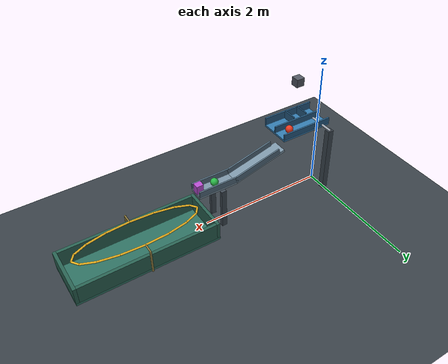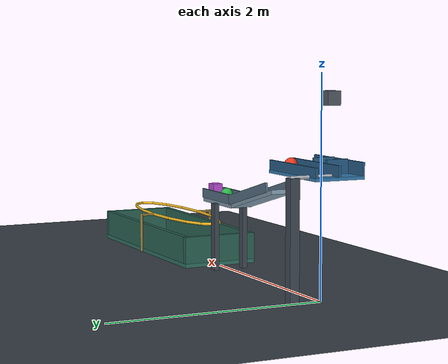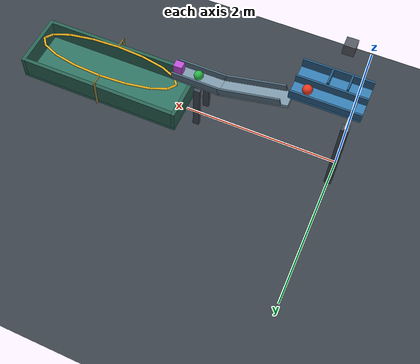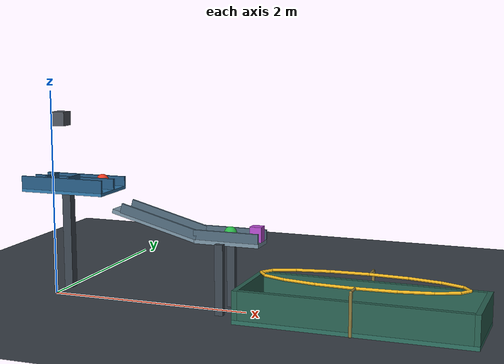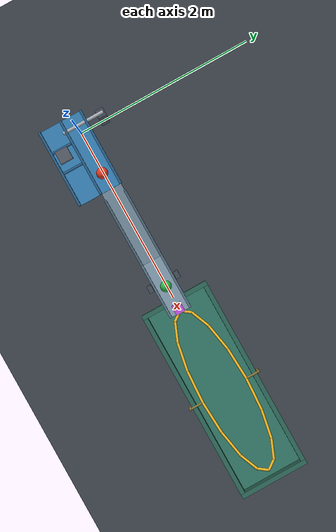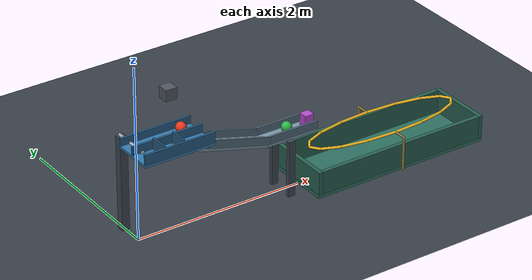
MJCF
<mujoco model="weight_tray_ball_chain">
  <compiler angle="degree" autolimits="true"/>
  <option timestep="0.002" gravity="0 0 -9.81" integrator="implicitfast" solver="Newton" iterations="100" tolerance="1e-10" cone="elliptic"/>
  <size nconmax="300" njmax="1200"/>
  <visual>
    <headlight ambient="0.35 0.35 0.35" diffuse="0.7 0.7 0.7" specular="0.2 0.2 0.2"/>
    <global azimuth="135" elevation="-25"/>
  </visual>

  <worldbody>
    <light name="main_light" pos="1 -3 5" dir="0 0 -1" directional="true"/>
    <camera name="overview" pos="4.8 -6 3.6" xyaxes="0.86 0.51 0 -0.20 0.34 0.92"/>

    <geom name="floor" type="plane" pos="0 0 0" size="8 5 0.1" friction="1 0.05 0.03" condim="6" priority="2" solref="0.01 1" rgba="0.22 0.25 0.28 1"/>

    <!-- The right-hand end lowers as the joint approaches its -15 degree lower limit. -->
    <body name="tray" pos="0 0 1.1">
      <joint name="tray_hinge" type="hinge" axis="0 -1 0" range="-15 0" limited="true" frictionloss="6.4" damping="0.25" armature="0.02" solreflimit="0.006 1" solimplimit="0.99 0.999 0.001"/>
      <geom name="tray_bottom" type="box" pos="0.30 -0.12 -0.015" size="0.42 0.245 0.015" mass="1" friction="0.5 0.003 0.001" condim="6" solref="0.008 1" rgba="0.20 0.48 0.68 1"/>
      <geom name="tray_ball_outer_rail" type="box" pos="0.30 0.112 0.045" size="0.42 0.012 0.045" mass="0.1" friction="0.4 0.003 0.001" condim="6" solref="0.008 1" rgba="0.15 0.36 0.52 1"/>
      <geom name="tray_divider" type="box" pos="0.30 -0.115 0.05" size="0.42 0.012 0.05" mass="0.1" friction="0.4 0.003 0.001" condim="6" solref="0.008 1" rgba="0.15 0.36 0.52 1"/>
      <geom name="tray_weight_outer_rail" type="box" pos="0.30 -0.355 0.06" size="0.42 0.012 0.06" mass="0.1" friction="0.6 0.005 0.001" condim="6" solref="0.008 1" rgba="0.15 0.36 0.52 1"/>
      <geom name="tray_weight_pocket_back" type="box" pos="0.13 -0.235 0.065" size="0.01 0.108 0.065" mass="0.08" friction="0.7 0.005 0.001" condim="6" solref="0.008 1" rgba="0.15 0.36 0.52 1"/>
      <geom name="tray_weight_pocket_front" type="box" pos="0.36 -0.235 0.065" size="0.01 0.108 0.065" mass="0.08" friction="0.7 0.005 0.001" condim="6" solref="0.008 1" rgba="0.15 0.36 0.52 1"/>
    </body>

    <!-- The weight's bottom begins 0.6 m above the tray surface. -->
    <body name="weight" pos="0.245 -0.235 1.765">
      <freejoint name="weight_free"/>
      <geom name="weight_cube" type="box" size="0.065 0.065 0.065" mass="4" friction="0.8 0.01 0.003" condim="6" solref="0.008 1" rgba="0.32 0.34 0.38 1"/>
    </body>

    <body name="ball1" pos="0.54 0 1.16">
      <freejoint name="ball1_free"/>
      <geom name="ball1_sphere" type="sphere" size="0.06" mass="0.25" friction="0.45 0.003 0.001" condim="6" solref="0.006 0.2" solimp="0.95 0.99 0.001" rgba="0.92 0.22 0.12 1"/>
    </body>

    <!-- The ramp has a 6 mm longitudinal clearance from the lowered tray. -->
    <!-- Its rails start farther downstream, outside the tray's swept volume. -->
    <body name="runway" pos="0 0 0">
      <geom name="runway_ramp" type="box" pos="1.120471 0 0.779066" euler="0 15 0" size="0.43935 0.112 0.02" friction="0.4 0.003 0.001" condim="6" solref="0.008 1" rgba="0.48 0.58 0.65 1"/>
      <geom name="runway_ramp_left_rail" type="box" pos="1.176567 -0.112 0.826150" euler="0 15 0" size="0.39735 0.012 0.045" friction="0.4 0.003 0.001" condim="6" solref="0.008 1" rgba="0.32 0.42 0.49 1"/>
      <geom name="runway_ramp_right_rail" type="box" pos="1.176567 0.112 0.826150" euler="0 15 0" size="0.39735 0.012 0.045" friction="0.4 0.003 0.001" condim="6" solref="0.008 1" rgba="0.32 0.42 0.49 1"/>
      <geom name="runway_transfer_deck" type="box" pos="1.845 0 0.66468" size="0.315 0.112 0.02" friction="0.35 0.003 0.001" condim="6" solref="0.008 1" rgba="0.48 0.58 0.65 1"/>
      <geom name="runway_deck_left_rail" type="box" pos="1.845 -0.112 0.72968" size="0.315 0.012 0.045" friction="0.4 0.003 0.001" condim="6" solref="0.008 1" rgba="0.32 0.42 0.49 1"/>
      <geom name="runway_deck_right_rail" type="box" pos="1.845 0.112 0.72968" size="0.315 0.012 0.045" friction="0.4 0.003 0.001" condim="6" solref="0.008 1" rgba="0.32 0.42 0.49 1"/>
      <geom name="runway_support_left" type="box" pos="1.80 -0.155 0.33234" size="0.04 0.025 0.33234" rgba="0.24 0.28 0.32 1"/>
      <geom name="runway_support_right" type="box" pos="1.80 0.155 0.33234" size="0.04 0.025 0.33234" rgba="0.24 0.28 0.32 1"/>
    </body>

    <body name="tray_support" pos="0 0 0">
      <geom name="tray_support_post" type="box" pos="0 0.28 0.55" size="0.045 0.045 0.55" contype="0" conaffinity="0" rgba="0.24 0.28 0.32 1"/>
      <geom name="tray_support_axle" type="cylinder" pos="0 0.08 1.1" euler="90 0 0" size="0.018 0.23" contype="0" conaffinity="0" rgba="0.65 0.68 0.72 1"/>
    </body>

    <body name="ball2" pos="1.85 0 0.74468">
      <freejoint name="ball2_free"/>
      <geom name="ball2_sphere" type="sphere" size="0.06" mass="0.25" friction="0.45 0.003 0.001" condim="6" solref="0.006 0.2" solimp="0.95 0.99 0.001" rgba="0.16 0.72 0.28 1"/>
    </body>

    <body name="block" pos="2.11 0 0.75468">
      <freejoint name="block_free"/>
      <geom name="block_payload" type="box" size="0.055 0.05 0.07" mass="0.1" friction="0.45 0.005 0.002" condim="6" solref="0.008 0.4" solimp="0.95 0.99 0.001" rgba="0.72 0.30 0.82 1"/>
    </body>

    <body name="hoop" pos="3.1 0 0.4">
      <geom name="hoop_segment_01" type="capsule" fromto="0.95 0 0 0.877686 0.099498 0" size="0.014" friction="0.6 0.01 0.005" condim="6" solref="0.01 0.8" rgba="0.95 0.72 0.12 1"/>
      <geom name="hoop_segment_02" type="capsule" fromto="0.877686 0.099498 0 0.671751 0.183848 0" size="0.014" friction="0.6 0.01 0.005" condim="6" solref="0.01 0.8" rgba="0.95 0.72 0.12 1"/>
      <geom name="hoop_segment_03" type="capsule" fromto="0.671751 0.183848 0 0.363549 0.240209 0" size="0.014" friction="0.6 0.01 0.005" condim="6" solref="0.01 0.8" rgba="0.95 0.72 0.12 1"/>
      <geom name="hoop_segment_04" type="capsule" fromto="0.363549 0.240209 0 0 0.26 0" size="0.014" friction="0.6 0.01 0.005" condim="6" solref="0.01 0.8" rgba="0.95 0.72 0.12 1"/>
      <geom name="hoop_segment_05" type="capsule" fromto="0 0.26 0 -0.363549 0.240209 0" size="0.014" friction="0.6 0.01 0.005" condim="6" solref="0.01 0.8" rgba="0.95 0.72 0.12 1"/>
      <geom name="hoop_segment_06" type="capsule" fromto="-0.363549 0.240209 0 -0.671751 0.183848 0" size="0.014" friction="0.6 0.01 0.005" condim="6" solref="0.01 0.8" rgba="0.95 0.72 0.12 1"/>
      <geom name="hoop_segment_07" type="capsule" fromto="-0.671751 0.183848 0 -0.877686 0.099498 0" size="0.014" friction="0.6 0.01 0.005" condim="6" solref="0.01 0.8" rgba="0.95 0.72 0.12 1"/>
      <geom name="hoop_segment_08" type="capsule" fromto="-0.877686 0.099498 0 -0.95 0 0" size="0.014" friction="0.6 0.01 0.005" condim="6" solref="0.01 0.8" rgba="0.95 0.72 0.12 1"/>
      <geom name="hoop_segment_09" type="capsule" fromto="-0.95 0 0 -0.877686 -0.099498 0" size="0.014" friction="0.6 0.01 0.005" condim="6" solref="0.01 0.8" rgba="0.95 0.72 0.12 1"/>
      <geom name="hoop_segment_10" type="capsule" fromto="-0.877686 -0.099498 0 -0.671751 -0.183848 0" size="0.014" friction="0.6 0.01 0.005" condim="6" solref="0.01 0.8" rgba="0.95 0.72 0.12 1"/>
      <geom name="hoop_segment_11" type="capsule" fromto="-0.671751 -0.183848 0 -0.363549 -0.240209 0" size="0.014" friction="0.6 0.01 0.005" condim="6" solref="0.01 0.8" rgba="0.95 0.72 0.12 1"/>
      <geom name="hoop_segment_12" type="capsule" fromto="-0.363549 -0.240209 0 0 -0.26 0" size="0.014" friction="0.6 0.01 0.005" condim="6" solref="0.01 0.8" rgba="0.95 0.72 0.12 1"/>
      <geom name="hoop_segment_13" type="capsule" fromto="0 -0.26 0 0.363549 -0.240209 0" size="0.014" friction="0.6 0.01 0.005" condim="6" solref="0.01 0.8" rgba="0.95 0.72 0.12 1"/>
      <geom name="hoop_segment_14" type="capsule" fromto="0.363549 -0.240209 0 0.671751 -0.183848 0" size="0.014" friction="0.6 0.01 0.005" condim="6" solref="0.01 0.8" rgba="0.95 0.72 0.12 1"/>
      <geom name="hoop_segment_15" type="capsule" fromto="0.671751 -0.183848 0 0.877686 -0.099498 0" size="0.014" friction="0.6 0.01 0.005" condim="6" solref="0.01 0.8" rgba="0.95 0.72 0.12 1"/>
      <geom name="hoop_segment_16" type="capsule" fromto="0.877686 -0.099498 0 0.95 0 0" size="0.014" friction="0.6 0.01 0.005" condim="6" solref="0.01 0.8" rgba="0.95 0.72 0.12 1"/>
      <geom name="hoop_left_bracket" type="capsule" fromto="0 -0.26 0 0 -0.405 0" size="0.012" rgba="0.55 0.48 0.24 1"/>
      <geom name="hoop_right_bracket" type="capsule" fromto="0 0.26 0 0 0.405 0" size="0.012" rgba="0.55 0.48 0.24 1"/>
      <geom name="hoop_left_stand" type="capsule" fromto="0 -0.405 -0.385 0 -0.405 0" size="0.015" rgba="0.55 0.48 0.24 1"/>
      <geom name="hoop_right_stand" type="capsule" fromto="0 0.405 -0.385 0 0.405 0" size="0.015" rgba="0.55 0.48 0.24 1"/>
    </body>

    <body name="bin" pos="3.1 0 0">
      <geom name="bin_bottom" type="box" pos="0 0 0.02" size="1.095 0.385 0.02" friction="1 0.05 0.03" condim="6" priority="2" solref="0.01 1" solimp="0.95 0.99 0.001" rgba="0.18 0.44 0.38 1"/>
      <geom name="bin_back_wall" type="box" pos="-1.07 0 0.175" size="0.025 0.385 0.135" friction="1 0.05 0.03" condim="6" priority="2" solref="0.01 1" solimp="0.95 0.99 0.001" rgba="0.16 0.38 0.32 1"/>
      <geom name="bin_front_wall" type="box" pos="1.07 0 0.175" size="0.025 0.385 0.135" friction="1 0.05 0.03" condim="6" priority="2" solref="0.01 1" solimp="0.95 0.99 0.001" rgba="0.16 0.38 0.32 1"/>
      <geom name="bin_left_wall" type="box" pos="0 -0.36 0.175" size="1.045 0.025 0.135" friction="1 0.05 0.03" condim="6" priority="2" solref="0.01 1" solimp="0.95 0.99 0.001" rgba="0.16 0.38 0.32 1"/>
      <geom name="bin_right_wall" type="box" pos="0 0.36 0.175" size="1.045 0.025 0.135" friction="1 0.05 0.03" condim="6" priority="2" solref="0.01 1" solimp="0.95 0.99 0.001" rgba="0.16 0.38 0.32 1"/>
    </body>
  </worldbody>

  <keyframe>
    <key name="start"/>
  </keyframe>
</mujoco>
